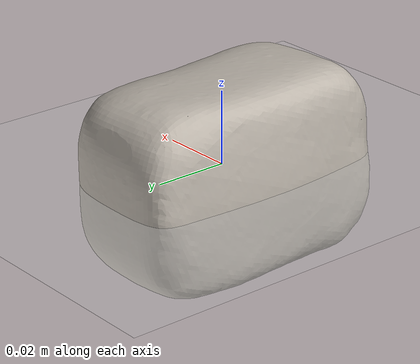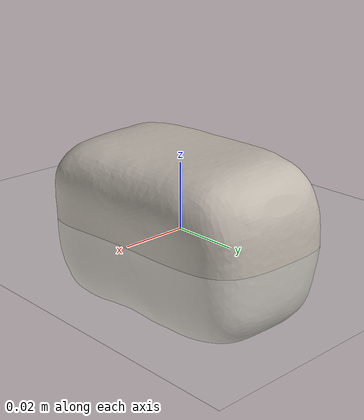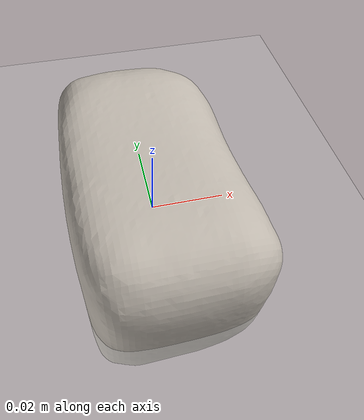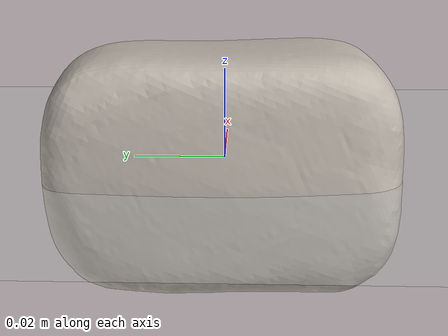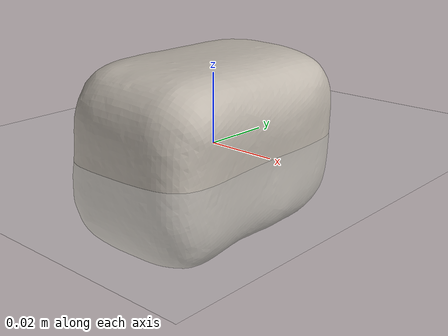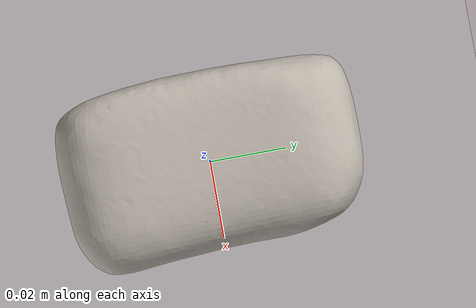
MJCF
<mujoco model="three_fingertip_cube">
    <visual>
      <global offwidth="1280" offheight="960"/>
    </visual>
    <compiler angle="radian"/>
    <size njmax="500" nconmax="100"/>
    <asset>
        <mesh name="object" file="../assets/objects/foam_brick.stl"/>
        <texture name='surface' file="../assets/textures/general_block.png" gridsize="3 4" gridlayout=".U..LFRB.D.."/>
        <material name="obj_surface" texture="surface" specular="1" shininess="0.3" reflectance="0.4"/>
        <texture type="2d" name="groundplane" builtin="checker" mark="edge" rgb1="0.2 0.3 0.4"
        rgb2="0.1 0.2 0.3" markrgb="0.8 0.8 0.8" width="300" height="300"/>
        <material name="groundplane" texture="groundplane" texuniform="true" texrepeat="5 5"
        reflectance="0.0"/>
    </asset>

    <worldbody>
        <light directional="true" ambient="0.3 0.3 0.3" diffuse="0.8 0.8 0.8"  castshadow="false" pos="0 1 4" dir="0 0 -1" name="light0"/>
        <camera name="demo-cam" pos="0.086 -0.324 0.157" xyaxes="0.966 0.259 0.000 -0.102 0.380 0.919"/>
        <camera name="demo-cam2" pos="-0.003 -0.654 0.316" xyaxes="1.000 -0.005 0.000 0.002 0.435 0.900"/>
        <camera name="demo-cam3" pos="0.010 -0.385 0.122" xyaxes="1.000 -0.004 0.000 0.001 0.208 0.978"/>

        <!-- pos and quat attributes of virtual obj must be put in 'geom' -->
        <body name="goal" >
            <geom name="goal" type="mesh" mesh="object" conaffinity="0" contype="0" material="obj_surface"
                pos="0.0 0.0 0.0" quat="0.70710678 0.         0.70710678 0. "
                rgba="1.0 1 1.0 0.3"/>
            <geom name="goal-decoration" type="mesh" mesh="object" conaffinity="0" contype="0"
                pos="0.0 0.0 0.0" quat="0.70710678 0.         0.70710678 0. "
                rgba="0.0 1 0.0 0.2"/>
        </body>

        <!-- ============================= real obj ========================================= -->
        <body name="obj" >
            <freejoint name="object_table"/>
            <geom name="obj" type="mesh" mesh="object" material="obj_surface"
                pos="0.0 0.0 0.0" quat="0.70710678 0.         0.70710678 0. "
                mass="0.01"
                condim="6"
                friction=".9" />
        </body>

        <geom name="table" rgba="0.8 0.8 0.8 1.0" friction="0.5"
                size="0 0 0.05" type="plane" material="groundplane"
                condim="6"
              />

        <body name="fingertip0" pos="0.0 0.0 0.0" quat="1 0 0 0">
            <joint name="fingertip0_x" type="slide" axis="1 0 0"/>
            <joint name="fingertip0_y" type="slide" axis="0 1 0"/>
            <joint name="fingertip0_z" type="slide" axis="0 0 1"/>
            <geom name="fingertip0"
                condim="6"
                pos="0.0 0.0 0.0" quat="1 0 0 0"
                size="0.01" type="sphere" friction="0.5" rgba="0.5 0 0 1"/>
        </body>

        <body name="fingertip1" pos="0.0 0.0 0.0" quat="1 0 0 0">
            <joint name="fingertip1_x" type="slide" axis="1 0 0"/>
            <joint name="fingertip1_y" type="slide" axis="0 1 0"/>
            <joint name="fingertip1_z" type="slide" axis="0 0 1"/>
            <geom name="fingertip1"
                condim="6"
                pos="0.0 0.0 0.0" quat="1 0 0 0"
                size="0.01" type="sphere" friction="0.5" rgba="0 0.5 0 1"/>
        </body>

        <body name="fingertip2" pos="0.0 0.0 0.0" quat="1 0 0 0">
            <joint name="fingertip2_x" type="slide" axis="1 0 0"/>
            <joint name="fingertip2_y" type="slide" axis="0 1 0"/>
            <joint name="fingertip2_z" type="slide" axis="0 0 1"/>
            <geom name="fingertip2"
                condim="6"
                pos="0.0 0.0 0.0" quat="1 0 0 0"
                size="0.01" type="sphere" friction="0.5" rgba="0 0 0.5 1"/>
        </body>

    </worldbody>

    <actuator>
        <motor name="fingertip0_refx" joint="fingertip0_x" ctrlrange="-1.5 1.5" ctrllimited="false"/>
        <motor name="fingertip0_refy" joint="fingertip0_y" ctrlrange="-1.5 1.5" ctrllimited="false"/>
        <motor name="fingertip0_refz" joint="fingertip0_z" ctrlrange="-1.5 1.5" ctrllimited="false"/>
        <motor name="fingertip1_refx" joint="fingertip1_x" ctrlrange="-1.5 1.5" ctrllimited="false"/>
        <motor name="fingertip1_refy" joint="fingertip1_y" ctrlrange="-1.5 1.5" ctrllimited="false"/>
        <motor name="fingertip1_refz" joint="fingertip1_z" ctrlrange="-1.5 1.5" ctrllimited="false"/>
        <motor name="fingertip2_refx" joint="fingertip2_x" ctrlrange="-1.5 1.5" ctrllimited="false"/>
        <motor name="fingertip2_refy" joint="fingertip2_y" ctrlrange="-1.5 1.5" ctrllimited="false"/>
        <motor name="fingertip2_refz" joint="fingertip2_z" ctrlrange="-1.5 1.5" ctrllimited="false"/>
    </actuator>
</mujoco>
